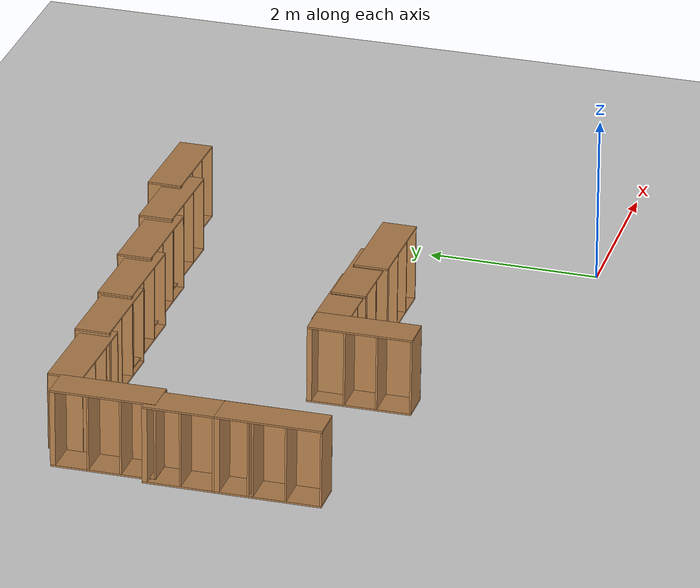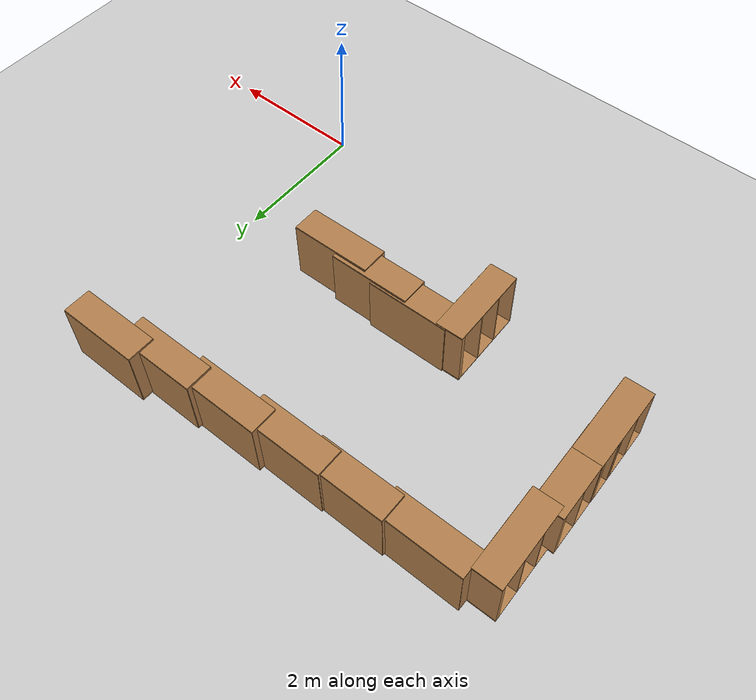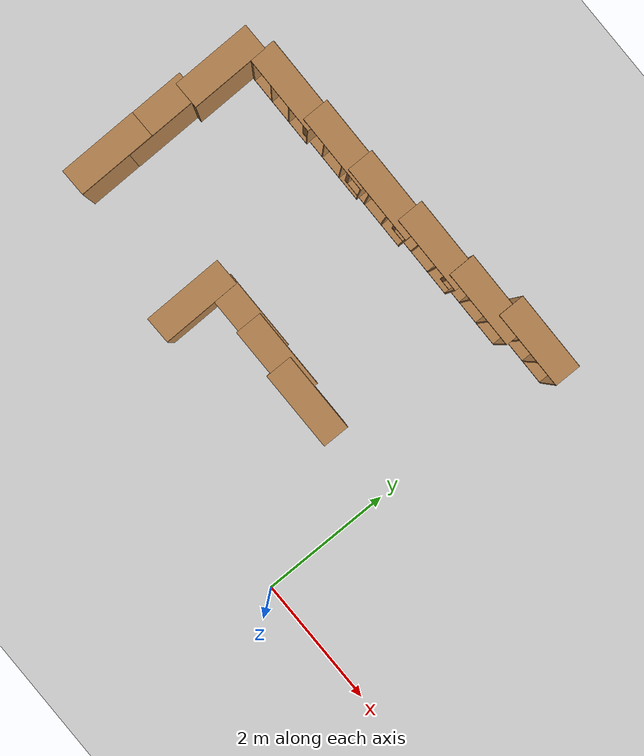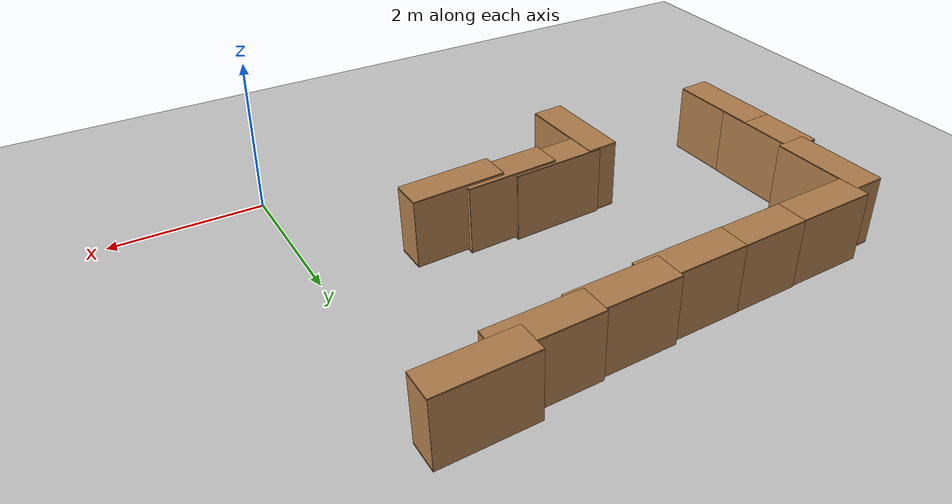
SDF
<sdf version="1.7">
 <world name="default">
  <model name="ground_plane">
   <static>1</static>
   <link name="link">
    <collision name="collision">
     <geometry><plane><normal>0 0 1</normal><size>100 100</size></plane></geometry>
     <surface>
      <contact><collide_bitmask>65535</collide_bitmask></contact>
      <friction><ode><mu>100</mu><mu2>50</mu2></ode></friction>
     </surface>
    </collision>
    <visual name="visual">
     <cast_shadows>0</cast_shadows>
     <geometry><plane><normal>0 0 1</normal><size>100 100</size></plane></geometry>
     <material>
      <script><uri>file://media/materials/scripts/gazebo.material</uri><name>Gazebo/Grey</name></script>
     </material>
    </visual>
   </link>
  </model>
  <model name="bookshelf_clone_clone_clone_4_clone_5_clone_4">
   <static>1</static>
   <link name="link">
    <inertial><mass>1</mass></inertial>
    <collision name="back">
     <pose>0 0.005 0.6 0 -0 0</pose>
     <geometry><box><size>0.9 0.01 1.2</size></box></geometry>
    </collision>
    <visual name="visual1">
     <pose>0 0.005 0.6 0 -0 0</pose>
     <geometry><box><size>0.9 0.01 1.2</size></box></geometry>
     <material>
      <script><uri>file://media/materials/scripts/gazebo.material</uri><name>Gazebo/Wood</name></script>
     </material>
    </visual>
    <collision name="left_side">
     <pose>0.45 -0.195 0.6 0 -0 0</pose>
     <geometry><box><size>0.02 0.4 1.2</size></box></geometry>
    </collision>
    <visual name="visual2">
     <pose>0.45 -0.195 0.6 0 -0 0</pose>
     <geometry><box><size>0.02 0.4 1.2</size></box></geometry>
     <material>
      <script><uri>file://media/materials/scripts/gazebo.material</uri><name>Gazebo/Wood</name></script>
     </material>
    </visual>
    <collision name="right_side">
     <pose>-0.45 -0.195 0.6 0 -0 0</pose>
     <geometry><box><size>0.02 0.4 1.2</size></box></geometry>
    </collision>
    <visual name="visual3">
     <pose>-0.45 -0.195 0.6 0 -0 0</pose>
     <geometry><box><size>0.02 0.4 1.2</size></box></geometry>
     <material>
      <script><uri>file://media/materials/scripts/gazebo.material</uri><name>Gazebo/Wood</name></script>
     </material>
    </visual>
    <collision name="bottom">
     <pose>0 -0.195 0.03 0 -0 0</pose>
     <geometry><box><size>0.88 0.4 0.06</size></box></geometry>
    </collision>
    <visual name="visual4">
     <pose>0 -0.195 0.03 0 -0 0</pose>
     <geometry><box><size>0.88 0.4 0.06</size></box></geometry>
     <material>
      <script><uri>file://media/materials/scripts/gazebo.material</uri><name>Gazebo/Wood</name></script>
     </material>
    </visual>
    <collision name="top">
     <pose>0 -0.195 1.19 0 -0 0</pose>
     <geometry><box><size>0.88 0.4 0.02</size></box></geometry>
    </collision>
    <visual name="visual5">
     <pose>0 -0.195 1.19 0 -0 0</pose>
     <geometry><box><size>0.88 0.4 0.02</size></box></geometry>
     <material>
      <script><uri>file://media/materials/scripts/gazebo.material</uri><name>Gazebo/Wood</name></script>
     </material>
    </visual>
    <collision name="low_shelf">
     <pose>0 -0.195 0.43 0 -0 0</pose>
     <geometry><box><size>0.88 0.4 0.02</size></box></geometry>
    </collision>
    <visual name="visual6">
     <pose>0 -0.195 0.43 0 -0 0</pose>
     <geometry><box><size>0.88 0.4 0.02</size></box></geometry>
     <material>
      <script><uri>file://media/materials/scripts/gazebo.material</uri><name>Gazebo/Wood</name></script>
     </material>
    </visual>
    <collision name="high_shelf">
     <pose>0 -0.195 0.8 0 -0 0</pose>
     <geometry><box><size>0.88 0.4 0.02</size></box></geometry>
    </collision>
    <visual name="visual7">
     <pose>0 -0.195 0.8 0 -0 0</pose>
     <geometry><box><size>0.88 0.4 0.02</size></box></geometry>
     <material>
      <script><uri>file://media/materials/scripts/gazebo.material</uri><name>Gazebo/Wood</name></script>
     </material>
    </visual>
   </link>
   <pose>-0.996923 5.14027 0.531222 3.1373 1.52729 3.13696</pose>
  </model>
  <model name="bookshelf_clone_clone_clone_4_clone_5_clone_5">
   <static>1</static>
   <link name="link">
    <inertial><mass>1</mass></inertial>
    <collision name="back">
     <pose>0 0.005 0.6 0 -0 0</pose>
     <geometry><box><size>0.9 0.01 1.2</size></box></geometry>
    </collision>
    <visual name="visual1">
     <pose>0 0.005 0.6 0 -0 0</pose>
     <geometry><box><size>0.9 0.01 1.2</size></box></geometry>
     <material>
      <script><uri>file://media/materials/scripts/gazebo.material</uri><name>Gazebo/Wood</name></script>
     </material>
    </visual>
    <collision name="left_side">
     <pose>0.45 -0.195 0.6 0 -0 0</pose>
     <geometry><box><size>0.02 0.4 1.2</size></box></geometry>
    </collision>
    <visual name="visual2">
     <pose>0.45 -0.195 0.6 0 -0 0</pose>
     <geometry><box><size>0.02 0.4 1.2</size></box></geometry>
     <material>
      <script><uri>file://media/materials/scripts/gazebo.material</uri><name>Gazebo/Wood</name></script>
     </material>
    </visual>
    <collision name="right_side">
     <pose>-0.45 -0.195 0.6 0 -0 0</pose>
     <geometry><box><size>0.02 0.4 1.2</size></box></geometry>
    </collision>
    <visual name="visual3">
     <pose>-0.45 -0.195 0.6 0 -0 0</pose>
     <geometry><box><size>0.02 0.4 1.2</size></box></geometry>
     <material>
      <script><uri>file://media/materials/scripts/gazebo.material</uri><name>Gazebo/Wood</name></script>
     </material>
    </visual>
    <collision name="bottom">
     <pose>0 -0.195 0.03 0 -0 0</pose>
     <geometry><box><size>0.88 0.4 0.06</size></box></geometry>
    </collision>
    <visual name="visual4">
     <pose>0 -0.195 0.03 0 -0 0</pose>
     <geometry><box><size>0.88 0.4 0.06</size></box></geometry>
     <material>
      <script><uri>file://media/materials/scripts/gazebo.material</uri><name>Gazebo/Wood</name></script>
     </material>
    </visual>
    <collision name="top">
     <pose>0 -0.195 1.19 0 -0 0</pose>
     <geometry><box><size>0.88 0.4 0.02</size></box></geometry>
    </collision>
    <visual name="visual5">
     <pose>0 -0.195 1.19 0 -0 0</pose>
     <geometry><box><size>0.88 0.4 0.02</size></box></geometry>
     <material>
      <script><uri>file://media/materials/scripts/gazebo.material</uri><name>Gazebo/Wood</name></script>
     </material>
    </visual>
    <collision name="low_shelf">
     <pose>0 -0.195 0.43 0 -0 0</pose>
     <geometry><box><size>0.88 0.4 0.02</size></box></geometry>
    </collision>
    <visual name="visual6">
     <pose>0 -0.195 0.43 0 -0 0</pose>
     <geometry><box><size>0.88 0.4 0.02</size></box></geometry>
     <material>
      <script><uri>file://media/materials/scripts/gazebo.material</uri><name>Gazebo/Wood</name></script>
     </material>
    </visual>
    <collision name="high_shelf">
     <pose>0 -0.195 0.8 0 -0 0</pose>
     <geometry><box><size>0.88 0.4 0.02</size></box></geometry>
    </collision>
    <visual name="visual7">
     <pose>0 -0.195 0.8 0 -0 0</pose>
     <geometry><box><size>0.88 0.4 0.02</size></box></geometry>
     <material>
      <script><uri>file://media/materials/scripts/gazebo.material</uri><name>Gazebo/Wood</name></script>
     </material>
    </visual>
   </link>
   <pose>-1.82659 4.97604 0.531222 3.1373 1.52729 3.13696</pose>
  </model>
  <model name="bookshelf_clone_clone_clone_4_clone_5_clone_6">
   <static>1</static>
   <link name="link">
    <inertial><mass>1</mass></inertial>
    <collision name="back">
     <pose>0 0.005 0.6 0 -0 0</pose>
     <geometry><box><size>0.9 0.01 1.2</size></box></geometry>
    </collision>
    <visual name="visual1">
     <pose>0 0.005 0.6 0 -0 0</pose>
     <geometry><box><size>0.9 0.01 1.2</size></box></geometry>
     <material>
      <script><uri>file://media/materials/scripts/gazebo.material</uri><name>Gazebo/Wood</name></script>
     </material>
    </visual>
    <collision name="left_side">
     <pose>0.45 -0.195 0.6 0 -0 0</pose>
     <geometry><box><size>0.02 0.4 1.2</size></box></geometry>
    </collision>
    <visual name="visual2">
     <pose>0.45 -0.195 0.6 0 -0 0</pose>
     <geometry><box><size>0.02 0.4 1.2</size></box></geometry>
     <material>
      <script><uri>file://media/materials/scripts/gazebo.material</uri><name>Gazebo/Wood</name></script>
     </material>
    </visual>
    <collision name="right_side">
     <pose>-0.45 -0.195 0.6 0 -0 0</pose>
     <geometry><box><size>0.02 0.4 1.2</size></box></geometry>
    </collision>
    <visual name="visual3">
     <pose>-0.45 -0.195 0.6 0 -0 0</pose>
     <geometry><box><size>0.02 0.4 1.2</size></box></geometry>
     <material>
      <script><uri>file://media/materials/scripts/gazebo.material</uri><name>Gazebo/Wood</name></script>
     </material>
    </visual>
    <collision name="bottom">
     <pose>0 -0.195 0.03 0 -0 0</pose>
     <geometry><box><size>0.88 0.4 0.06</size></box></geometry>
    </collision>
    <visual name="visual4">
     <pose>0 -0.195 0.03 0 -0 0</pose>
     <geometry><box><size>0.88 0.4 0.06</size></box></geometry>
     <material>
      <script><uri>file://media/materials/scripts/gazebo.material</uri><name>Gazebo/Wood</name></script>
     </material>
    </visual>
    <collision name="top">
     <pose>0 -0.195 1.19 0 -0 0</pose>
     <geometry><box><size>0.88 0.4 0.02</size></box></geometry>
    </collision>
    <visual name="visual5">
     <pose>0 -0.195 1.19 0 -0 0</pose>
     <geometry><box><size>0.88 0.4 0.02</size></box></geometry>
     <material>
      <script><uri>file://media/materials/scripts/gazebo.material</uri><name>Gazebo/Wood</name></script>
     </material>
    </visual>
    <collision name="low_shelf">
     <pose>0 -0.195 0.43 0 -0 0</pose>
     <geometry><box><size>0.88 0.4 0.02</size></box></geometry>
    </collision>
    <visual name="visual6">
     <pose>0 -0.195 0.43 0 -0 0</pose>
     <geometry><box><size>0.88 0.4 0.02</size></box></geometry>
     <material>
      <script><uri>file://media/materials/scripts/gazebo.material</uri><name>Gazebo/Wood</name></script>
     </material>
    </visual>
    <collision name="high_shelf">
     <pose>0 -0.195 0.8 0 -0 0</pose>
     <geometry><box><size>0.88 0.4 0.02</size></box></geometry>
    </collision>
    <visual name="visual7">
     <pose>0 -0.195 0.8 0 -0 0</pose>
     <geometry><box><size>0.88 0.4 0.02</size></box></geometry>
     <material>
      <script><uri>file://media/materials/scripts/gazebo.material</uri><name>Gazebo/Wood</name></script>
     </material>
    </visual>
   </link>
   <pose>-2.81139 4.90462 0.531222 3.1373 1.52729 3.13696</pose>
  </model>
  <model name="bookshelf_clone_clone_clone_4_clone_5_clone_7">
   <static>1</static>
   <link name="link">
    <inertial><mass>1</mass></inertial>
    <collision name="back">
     <pose>0 0.005 0.6 0 -0 0</pose>
     <geometry><box><size>0.9 0.01 1.2</size></box></geometry>
    </collision>
    <visual name="visual1">
     <pose>0 0.005 0.6 0 -0 0</pose>
     <geometry><box><size>0.9 0.01 1.2</size></box></geometry>
     <material>
      <script><uri>file://media/materials/scripts/gazebo.material</uri><name>Gazebo/Wood</name></script>
     </material>
    </visual>
    <collision name="left_side">
     <pose>0.45 -0.195 0.6 0 -0 0</pose>
     <geometry><box><size>0.02 0.4 1.2</size></box></geometry>
    </collision>
    <visual name="visual2">
     <pose>0.45 -0.195 0.6 0 -0 0</pose>
     <geometry><box><size>0.02 0.4 1.2</size></box></geometry>
     <material>
      <script><uri>file://media/materials/scripts/gazebo.material</uri><name>Gazebo/Wood</name></script>
     </material>
    </visual>
    <collision name="right_side">
     <pose>-0.45 -0.195 0.6 0 -0 0</pose>
     <geometry><box><size>0.02 0.4 1.2</size></box></geometry>
    </collision>
    <visual name="visual3">
     <pose>-0.45 -0.195 0.6 0 -0 0</pose>
     <geometry><box><size>0.02 0.4 1.2</size></box></geometry>
     <material>
      <script><uri>file://media/materials/scripts/gazebo.material</uri><name>Gazebo/Wood</name></script>
     </material>
    </visual>
    <collision name="bottom">
     <pose>0 -0.195 0.03 0 -0 0</pose>
     <geometry><box><size>0.88 0.4 0.06</size></box></geometry>
    </collision>
    <visual name="visual4">
     <pose>0 -0.195 0.03 0 -0 0</pose>
     <geometry><box><size>0.88 0.4 0.06</size></box></geometry>
     <material>
      <script><uri>file://media/materials/scripts/gazebo.material</uri><name>Gazebo/Wood</name></script>
     </material>
    </visual>
    <collision name="top">
     <pose>0 -0.195 1.19 0 -0 0</pose>
     <geometry><box><size>0.88 0.4 0.02</size></box></geometry>
    </collision>
    <visual name="visual5">
     <pose>0 -0.195 1.19 0 -0 0</pose>
     <geometry><box><size>0.88 0.4 0.02</size></box></geometry>
     <material>
      <script><uri>file://media/materials/scripts/gazebo.material</uri><name>Gazebo/Wood</name></script>
     </material>
    </visual>
    <collision name="low_shelf">
     <pose>0 -0.195 0.43 0 -0 0</pose>
     <geometry><box><size>0.88 0.4 0.02</size></box></geometry>
    </collision>
    <visual name="visual6">
     <pose>0 -0.195 0.43 0 -0 0</pose>
     <geometry><box><size>0.88 0.4 0.02</size></box></geometry>
     <material>
      <script><uri>file://media/materials/scripts/gazebo.material</uri><name>Gazebo/Wood</name></script>
     </material>
    </visual>
    <collision name="high_shelf">
     <pose>0 -0.195 0.8 0 -0 0</pose>
     <geometry><box><size>0.88 0.4 0.02</size></box></geometry>
    </collision>
    <visual name="visual7">
     <pose>0 -0.195 0.8 0 -0 0</pose>
     <geometry><box><size>0.88 0.4 0.02</size></box></geometry>
     <material>
      <script><uri>file://media/materials/scripts/gazebo.material</uri><name>Gazebo/Wood</name></script>
     </material>
    </visual>
   </link>
   <pose>-3.74348 4.82169 0.531222 3.1373 1.52729 3.13696</pose>
  </model>
  <model name="bookshelf_clone_clone_clone_4_clone_5_clone_14">
   <static>1</static>
   <link name="link">
    <inertial><mass>1</mass></inertial>
    <collision name="back">
     <pose>0 0.005 0.6 0 -0 0</pose>
     <geometry><box><size>0.9 0.01 1.2</size></box></geometry>
    </collision>
    <visual name="visual1">
     <pose>0 0.005 0.6 0 -0 0</pose>
     <geometry><box><size>0.9 0.01 1.2</size></box></geometry>
     <material>
      <script><uri>file://media/materials/scripts/gazebo.material</uri><name>Gazebo/Wood</name></script>
     </material>
    </visual>
    <collision name="left_side">
     <pose>0.45 -0.195 0.6 0 -0 0</pose>
     <geometry><box><size>0.02 0.4 1.2</size></box></geometry>
    </collision>
    <visual name="visual2">
     <pose>0.45 -0.195 0.6 0 -0 0</pose>
     <geometry><box><size>0.02 0.4 1.2</size></box></geometry>
     <material>
      <script><uri>file://media/materials/scripts/gazebo.material</uri><name>Gazebo/Wood</name></script>
     </material>
    </visual>
    <collision name="right_side">
     <pose>-0.45 -0.195 0.6 0 -0 0</pose>
     <geometry><box><size>0.02 0.4 1.2</size></box></geometry>
    </collision>
    <visual name="visual3">
     <pose>-0.45 -0.195 0.6 0 -0 0</pose>
     <geometry><box><size>0.02 0.4 1.2</size></box></geometry>
     <material>
      <script><uri>file://media/materials/scripts/gazebo.material</uri><name>Gazebo/Wood</name></script>
     </material>
    </visual>
    <collision name="bottom">
     <pose>0 -0.195 0.03 0 -0 0</pose>
     <geometry><box><size>0.88 0.4 0.06</size></box></geometry>
    </collision>
    <visual name="visual4">
     <pose>0 -0.195 0.03 0 -0 0</pose>
     <geometry><box><size>0.88 0.4 0.06</size></box></geometry>
     <material>
      <script><uri>file://media/materials/scripts/gazebo.material</uri><name>Gazebo/Wood</name></script>
     </material>
    </visual>
    <collision name="top">
     <pose>0 -0.195 1.19 0 -0 0</pose>
     <geometry><box><size>0.88 0.4 0.02</size></box></geometry>
    </collision>
    <visual name="visual5">
     <pose>0 -0.195 1.19 0 -0 0</pose>
     <geometry><box><size>0.88 0.4 0.02</size></box></geometry>
     <material>
      <script><uri>file://media/materials/scripts/gazebo.material</uri><name>Gazebo/Wood</name></script>
     </material>
    </visual>
    <collision name="low_shelf">
     <pose>0 -0.195 0.43 0 -0 0</pose>
     <geometry><box><size>0.88 0.4 0.02</size></box></geometry>
    </collision>
    <visual name="visual6">
     <pose>0 -0.195 0.43 0 -0 0</pose>
     <geometry><box><size>0.88 0.4 0.02</size></box></geometry>
     <material>
      <script><uri>file://media/materials/scripts/gazebo.material</uri><name>Gazebo/Wood</name></script>
     </material>
    </visual>
    <collision name="high_shelf">
     <pose>0 -0.195 0.8 0 -0 0</pose>
     <geometry><box><size>0.88 0.4 0.02</size></box></geometry>
    </collision>
    <visual name="visual7">
     <pose>0 -0.195 0.8 0 -0 0</pose>
     <geometry><box><size>0.88 0.4 0.02</size></box></geometry>
     <material>
      <script><uri>file://media/materials/scripts/gazebo.material</uri><name>Gazebo/Wood</name></script>
     </material>
    </visual>
   </link>
   <pose>-2.31926 2.26401 0.531222 3.1373 1.52729 3.13696</pose>
  </model>
  <model name="bookshelf_clone_clone_clone_4_clone_5_clone_15">
   <static>1</static>
   <link name="link">
    <inertial><mass>1</mass></inertial>
    <collision name="back">
     <pose>0 0.005 0.6 0 -0 0</pose>
     <geometry><box><size>0.9 0.01 1.2</size></box></geometry>
    </collision>
    <visual name="visual1">
     <pose>0 0.005 0.6 0 -0 0</pose>
     <geometry><box><size>0.9 0.01 1.2</size></box></geometry>
     <material>
      <script><uri>file://media/materials/scripts/gazebo.material</uri><name>Gazebo/Wood</name></script>
     </material>
    </visual>
    <collision name="left_side">
     <pose>0.45 -0.195 0.6 0 -0 0</pose>
     <geometry><box><size>0.02 0.4 1.2</size></box></geometry>
    </collision>
    <visual name="visual2">
     <pose>0.45 -0.195 0.6 0 -0 0</pose>
     <geometry><box><size>0.02 0.4 1.2</size></box></geometry>
     <material>
      <script><uri>file://media/materials/scripts/gazebo.material</uri><name>Gazebo/Wood</name></script>
     </material>
    </visual>
    <collision name="right_side">
     <pose>-0.45 -0.195 0.6 0 -0 0</pose>
     <geometry><box><size>0.02 0.4 1.2</size></box></geometry>
    </collision>
    <visual name="visual3">
     <pose>-0.45 -0.195 0.6 0 -0 0</pose>
     <geometry><box><size>0.02 0.4 1.2</size></box></geometry>
     <material>
      <script><uri>file://media/materials/scripts/gazebo.material</uri><name>Gazebo/Wood</name></script>
     </material>
    </visual>
    <collision name="bottom">
     <pose>0 -0.195 0.03 0 -0 0</pose>
     <geometry><box><size>0.88 0.4 0.06</size></box></geometry>
    </collision>
    <visual name="visual4">
     <pose>0 -0.195 0.03 0 -0 0</pose>
     <geometry><box><size>0.88 0.4 0.06</size></box></geometry>
     <material>
      <script><uri>file://media/materials/scripts/gazebo.material</uri><name>Gazebo/Wood</name></script>
     </material>
    </visual>
    <collision name="top">
     <pose>0 -0.195 1.19 0 -0 0</pose>
     <geometry><box><size>0.88 0.4 0.02</size></box></geometry>
    </collision>
    <visual name="visual5">
     <pose>0 -0.195 1.19 0 -0 0</pose>
     <geometry><box><size>0.88 0.4 0.02</size></box></geometry>
     <material>
      <script><uri>file://media/materials/scripts/gazebo.material</uri><name>Gazebo/Wood</name></script>
     </material>
    </visual>
    <collision name="low_shelf">
     <pose>0 -0.195 0.43 0 -0 0</pose>
     <geometry><box><size>0.88 0.4 0.02</size></box></geometry>
    </collision>
    <visual name="visual6">
     <pose>0 -0.195 0.43 0 -0 0</pose>
     <geometry><box><size>0.88 0.4 0.02</size></box></geometry>
     <material>
      <script><uri>file://media/materials/scripts/gazebo.material</uri><name>Gazebo/Wood</name></script>
     </material>
    </visual>
    <collision name="high_shelf">
     <pose>0 -0.195 0.8 0 -0 0</pose>
     <geometry><box><size>0.88 0.4 0.02</size></box></geometry>
    </collision>
    <visual name="visual7">
     <pose>0 -0.195 0.8 0 -0 0</pose>
     <geometry><box><size>0.88 0.4 0.02</size></box></geometry>
     <material>
      <script><uri>file://media/materials/scripts/gazebo.material</uri><name>Gazebo/Wood</name></script>
     </material>
    </visual>
   </link>
   <pose>-3.01775 2.32048 0.531222 3.1373 1.52729 3.13696</pose>
  </model>
  <model name="bookshelf_clone_clone_clone_4_clone_5_clone_16">
   <static>1</static>
   <link name="link">
    <inertial><mass>1</mass></inertial>
    <collision name="back">
     <pose>0 0.005 0.6 0 -0 0</pose>
     <geometry><box><size>0.9 0.01 1.2</size></box></geometry>
    </collision>
    <visual name="visual1">
     <pose>0 0.005 0.6 0 -0 0</pose>
     <geometry><box><size>0.9 0.01 1.2</size></box></geometry>
     <material>
      <script><uri>file://media/materials/scripts/gazebo.material</uri><name>Gazebo/Wood</name></script>
     </material>
    </visual>
    <collision name="left_side">
     <pose>0.45 -0.195 0.6 0 -0 0</pose>
     <geometry><box><size>0.02 0.4 1.2</size></box></geometry>
    </collision>
    <visual name="visual2">
     <pose>0.45 -0.195 0.6 0 -0 0</pose>
     <geometry><box><size>0.02 0.4 1.2</size></box></geometry>
     <material>
      <script><uri>file://media/materials/scripts/gazebo.material</uri><name>Gazebo/Wood</name></script>
     </material>
    </visual>
    <collision name="right_side">
     <pose>-0.45 -0.195 0.6 0 -0 0</pose>
     <geometry><box><size>0.02 0.4 1.2</size></box></geometry>
    </collision>
    <visual name="visual3">
     <pose>-0.45 -0.195 0.6 0 -0 0</pose>
     <geometry><box><size>0.02 0.4 1.2</size></box></geometry>
     <material>
      <script><uri>file://media/materials/scripts/gazebo.material</uri><name>Gazebo/Wood</name></script>
     </material>
    </visual>
    <collision name="bottom">
     <pose>0 -0.195 0.03 0 -0 0</pose>
     <geometry><box><size>0.88 0.4 0.06</size></box></geometry>
    </collision>
    <visual name="visual4">
     <pose>0 -0.195 0.03 0 -0 0</pose>
     <geometry><box><size>0.88 0.4 0.06</size></box></geometry>
     <material>
      <script><uri>file://media/materials/scripts/gazebo.material</uri><name>Gazebo/Wood</name></script>
     </material>
    </visual>
    <collision name="top">
     <pose>0 -0.195 1.19 0 -0 0</pose>
     <geometry><box><size>0.88 0.4 0.02</size></box></geometry>
    </collision>
    <visual name="visual5">
     <pose>0 -0.195 1.19 0 -0 0</pose>
     <geometry><box><size>0.88 0.4 0.02</size></box></geometry>
     <material>
      <script><uri>file://media/materials/scripts/gazebo.material</uri><name>Gazebo/Wood</name></script>
     </material>
    </visual>
    <collision name="low_shelf">
     <pose>0 -0.195 0.43 0 -0 0</pose>
     <geometry><box><size>0.88 0.4 0.02</size></box></geometry>
    </collision>
    <visual name="visual6">
     <pose>0 -0.195 0.43 0 -0 0</pose>
     <geometry><box><size>0.88 0.4 0.02</size></box></geometry>
     <material>
      <script><uri>file://media/materials/scripts/gazebo.material</uri><name>Gazebo/Wood</name></script>
     </material>
    </visual>
    <collision name="high_shelf">
     <pose>0 -0.195 0.8 0 -0 0</pose>
     <geometry><box><size>0.88 0.4 0.02</size></box></geometry>
    </collision>
    <visual name="visual7">
     <pose>0 -0.195 0.8 0 -0 0</pose>
     <geometry><box><size>0.88 0.4 0.02</size></box></geometry>
     <material>
      <script><uri>file://media/materials/scripts/gazebo.material</uri><name>Gazebo/Wood</name></script>
     </material>
    </visual>
   </link>
   <pose>-3.66049 2.3496 0.531222 3.1373 1.52729 3.13696</pose>
  </model>
  <model name="bookshelf_clone_clone_clone_4_clone_5_clone_17">
   <static>1</static>
   <link name="link">
    <inertial><mass>1</mass></inertial>
    <collision name="back">
     <pose>0 0.005 0.6 0 -0 0</pose>
     <geometry><box><size>0.9 0.01 1.2</size></box></geometry>
    </collision>
    <visual name="visual1">
     <pose>0 0.005 0.6 0 -0 0</pose>
     <geometry><box><size>0.9 0.01 1.2</size></box></geometry>
     <material>
      <script><uri>file://media/materials/scripts/gazebo.material</uri><name>Gazebo/Wood</name></script>
     </material>
    </visual>
    <collision name="left_side">
     <pose>0.45 -0.195 0.6 0 -0 0</pose>
     <geometry><box><size>0.02 0.4 1.2</size></box></geometry>
    </collision>
    <visual name="visual2">
     <pose>0.45 -0.195 0.6 0 -0 0</pose>
     <geometry><box><size>0.02 0.4 1.2</size></box></geometry>
     <material>
      <script><uri>file://media/materials/scripts/gazebo.material</uri><name>Gazebo/Wood</name></script>
     </material>
    </visual>
    <collision name="right_side">
     <pose>-0.45 -0.195 0.6 0 -0 0</pose>
     <geometry><box><size>0.02 0.4 1.2</size></box></geometry>
    </collision>
    <visual name="visual3">
     <pose>-0.45 -0.195 0.6 0 -0 0</pose>
     <geometry><box><size>0.02 0.4 1.2</size></box></geometry>
     <material>
      <script><uri>file://media/materials/scripts/gazebo.material</uri><name>Gazebo/Wood</name></script>
     </material>
    </visual>
    <collision name="bottom">
     <pose>0 -0.195 0.03 0 -0 0</pose>
     <geometry><box><size>0.88 0.4 0.06</size></box></geometry>
    </collision>
    <visual name="visual4">
     <pose>0 -0.195 0.03 0 -0 0</pose>
     <geometry><box><size>0.88 0.4 0.06</size></box></geometry>
     <material>
      <script><uri>file://media/materials/scripts/gazebo.material</uri><name>Gazebo/Wood</name></script>
     </material>
    </visual>
    <collision name="top">
     <pose>0 -0.195 1.19 0 -0 0</pose>
     <geometry><box><size>0.88 0.4 0.02</size></box></geometry>
    </collision>
    <visual name="visual5">
     <pose>0 -0.195 1.19 0 -0 0</pose>
     <geometry><box><size>0.88 0.4 0.02</size></box></geometry>
     <material>
      <script><uri>file://media/materials/scripts/gazebo.material</uri><name>Gazebo/Wood</name></script>
     </material>
    </visual>
    <collision name="low_shelf">
     <pose>0 -0.195 0.43 0 -0 0</pose>
     <geometry><box><size>0.88 0.4 0.02</size></box></geometry>
    </collision>
    <visual name="visual6">
     <pose>0 -0.195 0.43 0 -0 0</pose>
     <geometry><box><size>0.88 0.4 0.02</size></box></geometry>
     <material>
      <script><uri>file://media/materials/scripts/gazebo.material</uri><name>Gazebo/Wood</name></script>
     </material>
    </visual>
    <collision name="high_shelf">
     <pose>0 -0.195 0.8 0 -0 0</pose>
     <geometry><box><size>0.88 0.4 0.02</size></box></geometry>
    </collision>
    <visual name="visual7">
     <pose>0 -0.195 0.8 0 -0 0</pose>
     <geometry><box><size>0.88 0.4 0.02</size></box></geometry>
     <material>
      <script><uri>file://media/materials/scripts/gazebo.material</uri><name>Gazebo/Wood</name></script>
     </material>
    </visual>
   </link>
   <pose>-4.62934 4.78568 0.531222 3.1373 1.52729 3.13696</pose>
  </model>
  <model name="bookshelf_clone_clone_clone_5_clone_clone">
   <static>1</static>
   <link name="link">
    <inertial><mass>1</mass></inertial>
    <collision name="back">
     <pose>0 0.005 0.6 0 -0 0</pose>
     <geometry><box><size>0.9 0.01 1.2</size></box></geometry>
    </collision>
    <visual name="visual1">
     <pose>0 0.005 0.6 0 -0 0</pose>
     <geometry><box><size>0.9 0.01 1.2</size></box></geometry>
     <material>
      <script><uri>file://media/materials/scripts/gazebo.material</uri><name>Gazebo/Wood</name></script>
     </material>
    </visual>
    <collision name="left_side">
     <pose>0.45 -0.195 0.6 0 -0 0</pose>
     <geometry><box><size>0.02 0.4 1.2</size></box></geometry>
    </collision>
    <visual name="visual2">
     <pose>0.45 -0.195 0.6 0 -0 0</pose>
     <geometry><box><size>0.02 0.4 1.2</size></box></geometry>
     <material>
      <script><uri>file://media/materials/scripts/gazebo.material</uri><name>Gazebo/Wood</name></script>
     </material>
    </visual>
    <collision name="right_side">
     <pose>-0.45 -0.195 0.6 0 -0 0</pose>
     <geometry><box><size>0.02 0.4 1.2</size></box></geometry>
    </collision>
    <visual name="visual3">
     <pose>-0.45 -0.195 0.6 0 -0 0</pose>
     <geometry><box><size>0.02 0.4 1.2</size></box></geometry>
     <material>
      <script><uri>file://media/materials/scripts/gazebo.material</uri><name>Gazebo/Wood</name></script>
     </material>
    </visual>
    <collision name="bottom">
     <pose>0 -0.195 0.03 0 -0 0</pose>
     <geometry><box><size>0.88 0.4 0.06</size></box></geometry>
    </collision>
    <visual name="visual4">
     <pose>0 -0.195 0.03 0 -0 0</pose>
     <geometry><box><size>0.88 0.4 0.06</size></box></geometry>
     <material>
      <script><uri>file://media/materials/scripts/gazebo.material</uri><name>Gazebo/Wood</name></script>
     </material>
    </visual>
    <collision name="top">
     <pose>0 -0.195 1.19 0 -0 0</pose>
     <geometry><box><size>0.88 0.4 0.02</size></box></geometry>
    </collision>
    <visual name="visual5">
     <pose>0 -0.195 1.19 0 -0 0</pose>
     <geometry><box><size>0.88 0.4 0.02</size></box></geometry>
     <material>
      <script><uri>file://media/materials/scripts/gazebo.material</uri><name>Gazebo/Wood</name></script>
     </material>
    </visual>
    <collision name="low_shelf">
     <pose>0 -0.195 0.43 0 -0 0</pose>
     <geometry><box><size>0.88 0.4 0.02</size></box></geometry>
    </collision>
    <visual name="visual6">
     <pose>0 -0.195 0.43 0 -0 0</pose>
     <geometry><box><size>0.88 0.4 0.02</size></box></geometry>
     <material>
      <script><uri>file://media/materials/scripts/gazebo.material</uri><name>Gazebo/Wood</name></script>
     </material>
    </visual>
    <collision name="high_shelf">
     <pose>0 -0.195 0.8 0 -0 0</pose>
     <geometry><box><size>0.88 0.4 0.02</size></box></geometry>
    </collision>
    <visual name="visual7">
     <pose>0 -0.195 0.8 0 -0 0</pose>
     <geometry><box><size>0.88 0.4 0.02</size></box></geometry>
     <material>
      <script><uri>file://media/materials/scripts/gazebo.material</uri><name>Gazebo/Wood</name></script>
     </material>
    </visual>
   </link>
   <pose>-3.51899 2.34244 0.531222 -1.58898 1.52729 3.13696</pose>
  </model>
  <model name="bookshelf_clone_clone_clone_5_clone_clone_3">
   <static>1</static>
   <link name="link">
    <inertial><mass>1</mass></inertial>
    <collision name="back">
     <pose>0 0.005 0.6 0 -0 0</pose>
     <geometry><box><size>0.9 0.01 1.2</size></box></geometry>
    </collision>
    <visual name="visual1">
     <pose>0 0.005 0.6 0 -0 0</pose>
     <geometry><box><size>0.9 0.01 1.2</size></box></geometry>
     <material>
      <script><uri>file://media/materials/scripts/gazebo.material</uri><name>Gazebo/Wood</name></script>
     </material>
    </visual>
    <collision name="left_side">
     <pose>0.45 -0.195 0.6 0 -0 0</pose>
     <geometry><box><size>0.02 0.4 1.2</size></box></geometry>
    </collision>
    <visual name="visual2">
     <pose>0.45 -0.195 0.6 0 -0 0</pose>
     <geometry><box><size>0.02 0.4 1.2</size></box></geometry>
     <material>
      <script><uri>file://media/materials/scripts/gazebo.material</uri><name>Gazebo/Wood</name></script>
     </material>
    </visual>
    <collision name="right_side">
     <pose>-0.45 -0.195 0.6 0 -0 0</pose>
     <geometry><box><size>0.02 0.4 1.2</size></box></geometry>
    </collision>
    <visual name="visual3">
     <pose>-0.45 -0.195 0.6 0 -0 0</pose>
     <geometry><box><size>0.02 0.4 1.2</size></box></geometry>
     <material>
      <script><uri>file://media/materials/scripts/gazebo.material</uri><name>Gazebo/Wood</name></script>
     </material>
    </visual>
    <collision name="bottom">
     <pose>0 -0.195 0.03 0 -0 0</pose>
     <geometry><box><size>0.88 0.4 0.06</size></box></geometry>
    </collision>
    <visual name="visual4">
     <pose>0 -0.195 0.03 0 -0 0</pose>
     <geometry><box><size>0.88 0.4 0.06</size></box></geometry>
     <material>
      <script><uri>file://media/materials/scripts/gazebo.material</uri><name>Gazebo/Wood</name></script>
     </material>
    </visual>
    <collision name="top">
     <pose>0 -0.195 1.19 0 -0 0</pose>
     <geometry><box><size>0.88 0.4 0.02</size></box></geometry>
    </collision>
    <visual name="visual5">
     <pose>0 -0.195 1.19 0 -0 0</pose>
     <geometry><box><size>0.88 0.4 0.02</size></box></geometry>
     <material>
      <script><uri>file://media/materials/scripts/gazebo.material</uri><name>Gazebo/Wood</name></script>
     </material>
    </visual>
    <collision name="low_shelf">
     <pose>0 -0.195 0.43 0 -0 0</pose>
     <geometry><box><size>0.88 0.4 0.02</size></box></geometry>
    </collision>
    <visual name="visual6">
     <pose>0 -0.195 0.43 0 -0 0</pose>
     <geometry><box><size>0.88 0.4 0.02</size></box></geometry>
     <material>
      <script><uri>file://media/materials/scripts/gazebo.material</uri><name>Gazebo/Wood</name></script>
     </material>
    </visual>
    <collision name="high_shelf">
     <pose>0 -0.195 0.8 0 -0 0</pose>
     <geometry><box><size>0.88 0.4 0.02</size></box></geometry>
    </collision>
    <visual name="visual7">
     <pose>0 -0.195 0.8 0 -0 0</pose>
     <geometry><box><size>0.88 0.4 0.02</size></box></geometry>
     <material>
      <script><uri>file://media/materials/scripts/gazebo.material</uri><name>Gazebo/Wood</name></script>
     </material>
    </visual>
   </link>
   <pose>-5.67113 4.59276 0.531222 -1.58898 1.52729 3.13696</pose>
  </model>
  <model name="bookshelf_clone_clone_clone_5_clone_clone_4">
   <static>1</static>
   <link name="link">
    <inertial><mass>1</mass></inertial>
    <collision name="back">
     <pose>0 0.005 0.6 0 -0 0</pose>
     <geometry><box><size>0.9 0.01 1.2</size></box></geometry>
    </collision>
    <visual name="visual1">
     <pose>0 0.005 0.6 0 -0 0</pose>
     <geometry><box><size>0.9 0.01 1.2</size></box></geometry>
     <material>
      <script><uri>file://media/materials/scripts/gazebo.material</uri><name>Gazebo/Wood</name></script>
     </material>
    </visual>
    <collision name="left_side">
     <pose>0.45 -0.195 0.6 0 -0 0</pose>
     <geometry><box><size>0.02 0.4 1.2</size></box></geometry>
    </collision>
    <visual name="visual2">
     <pose>0.45 -0.195 0.6 0 -0 0</pose>
     <geometry><box><size>0.02 0.4 1.2</size></box></geometry>
     <material>
      <script><uri>file://media/materials/scripts/gazebo.material</uri><name>Gazebo/Wood</name></script>
     </material>
    </visual>
    <collision name="right_side">
     <pose>-0.45 -0.195 0.6 0 -0 0</pose>
     <geometry><box><size>0.02 0.4 1.2</size></box></geometry>
    </collision>
    <visual name="visual3">
     <pose>-0.45 -0.195 0.6 0 -0 0</pose>
     <geometry><box><size>0.02 0.4 1.2</size></box></geometry>
     <material>
      <script><uri>file://media/materials/scripts/gazebo.material</uri><name>Gazebo/Wood</name></script>
     </material>
    </visual>
    <collision name="bottom">
     <pose>0 -0.195 0.03 0 -0 0</pose>
     <geometry><box><size>0.88 0.4 0.06</size></box></geometry>
    </collision>
    <visual name="visual4">
     <pose>0 -0.195 0.03 0 -0 0</pose>
     <geometry><box><size>0.88 0.4 0.06</size></box></geometry>
     <material>
      <script><uri>file://media/materials/scripts/gazebo.material</uri><name>Gazebo/Wood</name></script>
     </material>
    </visual>
    <collision name="top">
     <pose>0 -0.195 1.19 0 -0 0</pose>
     <geometry><box><size>0.88 0.4 0.02</size></box></geometry>
    </collision>
    <visual name="visual5">
     <pose>0 -0.195 1.19 0 -0 0</pose>
     <geometry><box><size>0.88 0.4 0.02</size></box></geometry>
     <material>
      <script><uri>file://media/materials/scripts/gazebo.material</uri><name>Gazebo/Wood</name></script>
     </material>
    </visual>
    <collision name="low_shelf">
     <pose>0 -0.195 0.43 0 -0 0</pose>
     <geometry><box><size>0.88 0.4 0.02</size></box></geometry>
    </collision>
    <visual name="visual6">
     <pose>0 -0.195 0.43 0 -0 0</pose>
     <geometry><box><size>0.88 0.4 0.02</size></box></geometry>
     <material>
      <script><uri>file://media/materials/scripts/gazebo.material</uri><name>Gazebo/Wood</name></script>
     </material>
    </visual>
    <collision name="high_shelf">
     <pose>0 -0.195 0.8 0 -0 0</pose>
     <geometry><box><size>0.88 0.4 0.02</size></box></geometry>
    </collision>
    <visual name="visual7">
     <pose>0 -0.195 0.8 0 -0 0</pose>
     <geometry><box><size>0.88 0.4 0.02</size></box></geometry>
     <material>
      <script><uri>file://media/materials/scripts/gazebo.material</uri><name>Gazebo/Wood</name></script>
     </material>
    </visual>
   </link>
   <pose>-5.7371 3.52369 0.531222 -1.58898 1.52729 3.13696</pose>
  </model>
  <model name="bookshelf_clone_clone_clone_5_clone_clone_5">
   <static>1</static>
   <link name="link">
    <inertial><mass>1</mass></inertial>
    <collision name="back">
     <pose>0 0.005 0.6 0 -0 0</pose>
     <geometry><box><size>0.9 0.01 1.2</size></box></geometry>
    </collision>
    <visual name="visual1">
     <pose>0 0.005 0.6 0 -0 0</pose>
     <geometry><box><size>0.9 0.01 1.2</size></box></geometry>
     <material>
      <script><uri>file://media/materials/scripts/gazebo.material</uri><name>Gazebo/Wood</name></script>
     </material>
    </visual>
    <collision name="left_side">
     <pose>0.45 -0.195 0.6 0 -0 0</pose>
     <geometry><box><size>0.02 0.4 1.2</size></box></geometry>
    </collision>
    <visual name="visual2">
     <pose>0.45 -0.195 0.6 0 -0 0</pose>
     <geometry><box><size>0.02 0.4 1.2</size></box></geometry>
     <material>
      <script><uri>file://media/materials/scripts/gazebo.material</uri><name>Gazebo/Wood</name></script>
     </material>
    </visual>
    <collision name="right_side">
     <pose>-0.45 -0.195 0.6 0 -0 0</pose>
     <geometry><box><size>0.02 0.4 1.2</size></box></geometry>
    </collision>
    <visual name="visual3">
     <pose>-0.45 -0.195 0.6 0 -0 0</pose>
     <geometry><box><size>0.02 0.4 1.2</size></box></geometry>
     <material>
      <script><uri>file://media/materials/scripts/gazebo.material</uri><name>Gazebo/Wood</name></script>
     </material>
    </visual>
    <collision name="bottom">
     <pose>0 -0.195 0.03 0 -0 0</pose>
     <geometry><box><size>0.88 0.4 0.06</size></box></geometry>
    </collision>
    <visual name="visual4">
     <pose>0 -0.195 0.03 0 -0 0</pose>
     <geometry><box><size>0.88 0.4 0.06</size></box></geometry>
     <material>
      <script><uri>file://media/materials/scripts/gazebo.material</uri><name>Gazebo/Wood</name></script>
     </material>
    </visual>
    <collision name="top">
     <pose>0 -0.195 1.19 0 -0 0</pose>
     <geometry><box><size>0.88 0.4 0.02</size></box></geometry>
    </collision>
    <visual name="visual5">
     <pose>0 -0.195 1.19 0 -0 0</pose>
     <geometry><box><size>0.88 0.4 0.02</size></box></geometry>
     <material>
      <script><uri>file://media/materials/scripts/gazebo.material</uri><name>Gazebo/Wood</name></script>
     </material>
    </visual>
    <collision name="low_shelf">
     <pose>0 -0.195 0.43 0 -0 0</pose>
     <geometry><box><size>0.88 0.4 0.02</size></box></geometry>
    </collision>
    <visual name="visual6">
     <pose>0 -0.195 0.43 0 -0 0</pose>
     <geometry><box><size>0.88 0.4 0.02</size></box></geometry>
     <material>
      <script><uri>file://media/materials/scripts/gazebo.material</uri><name>Gazebo/Wood</name></script>
     </material>
    </visual>
    <collision name="high_shelf">
     <pose>0 -0.195 0.8 0 -0 0</pose>
     <geometry><box><size>0.88 0.4 0.02</size></box></geometry>
    </collision>
    <visual name="visual7">
     <pose>0 -0.195 0.8 0 -0 0</pose>
     <geometry><box><size>0.88 0.4 0.02</size></box></geometry>
     <material>
      <script><uri>file://media/materials/scripts/gazebo.material</uri><name>Gazebo/Wood</name></script>
     </material>
    </visual>
   </link>
   <pose>-5.72901 2.71295 0.531222 -1.58898 1.52729 3.13696</pose>
  </model>
  <model name="bookshelf_clone_clone_clone_4_clone_5_clone_17_clone">
   <static>1</static>
   <link name="link">
    <inertial><mass>1</mass></inertial>
    <collision name="back">
     <pose>0 0.005 0.6 0 -0 0</pose>
     <geometry><box><size>0.9 0.01 1.2</size></box></geometry>
    </collision>
    <visual name="visual1">
     <pose>0 0.005 0.6 0 -0 0</pose>
     <geometry><box><size>0.9 0.01 1.2</size></box></geometry>
     <material>
      <script><uri>file://media/materials/scripts/gazebo.material</uri><name>Gazebo/Wood</name></script>
     </material>
    </visual>
    <collision name="left_side">
     <pose>0.45 -0.195 0.6 0 -0 0</pose>
     <geometry><box><size>0.02 0.4 1.2</size></box></geometry>
    </collision>
    <visual name="visual2">
     <pose>0.45 -0.195 0.6 0 -0 0</pose>
     <geometry><box><size>0.02 0.4 1.2</size></box></geometry>
     <material>
      <script><uri>file://media/materials/scripts/gazebo.material</uri><name>Gazebo/Wood</name></script>
     </material>
    </visual>
    <collision name="right_side">
     <pose>-0.45 -0.195 0.6 0 -0 0</pose>
     <geometry><box><size>0.02 0.4 1.2</size></box></geometry>
    </collision>
    <visual name="visual3">
     <pose>-0.45 -0.195 0.6 0 -0 0</pose>
     <geometry><box><size>0.02 0.4 1.2</size></box></geometry>
     <material>
      <script><uri>file://media/materials/scripts/gazebo.material</uri><name>Gazebo/Wood</name></script>
     </material>
    </visual>
    <collision name="bottom">
     <pose>0 -0.195 0.03 0 -0 0</pose>
     <geometry><box><size>0.88 0.4 0.06</size></box></geometry>
    </collision>
    <visual name="visual4">
     <pose>0 -0.195 0.03 0 -0 0</pose>
     <geometry><box><size>0.88 0.4 0.06</size></box></geometry>
     <material>
      <script><uri>file://media/materials/scripts/gazebo.material</uri><name>Gazebo/Wood</name></script>
     </material>
    </visual>
    <collision name="top">
     <pose>0 -0.195 1.19 0 -0 0</pose>
     <geometry><box><size>0.88 0.4 0.02</size></box></geometry>
    </collision>
    <visual name="visual5">
     <pose>0 -0.195 1.19 0 -0 0</pose>
     <geometry><box><size>0.88 0.4 0.02</size></box></geometry>
     <material>
      <script><uri>file://media/materials/scripts/gazebo.material</uri><name>Gazebo/Wood</name></script>
     </material>
    </visual>
    <collision name="low_shelf">
     <pose>0 -0.195 0.43 0 -0 0</pose>
     <geometry><box><size>0.88 0.4 0.02</size></box></geometry>
    </collision>
    <visual name="visual6">
     <pose>0 -0.195 0.43 0 -0 0</pose>
     <geometry><box><size>0.88 0.4 0.02</size></box></geometry>
     <material>
      <script><uri>file://media/materials/scripts/gazebo.material</uri><name>Gazebo/Wood</name></script>
     </material>
    </visual>
    <collision name="high_shelf">
     <pose>0 -0.195 0.8 0 -0 0</pose>
     <geometry><box><size>0.88 0.4 0.02</size></box></geometry>
    </collision>
    <visual name="visual7">
     <pose>0 -0.195 0.8 0 -0 0</pose>
     <geometry><box><size>0.88 0.4 0.02</size></box></geometry>
     <material>
      <script><uri>file://media/materials/scripts/gazebo.material</uri><name>Gazebo/Wood</name></script>
     </material>
    </visual>
   </link>
   <pose>-5.6775 4.73741 0.531222 3.1373 1.52729 3.13696</pose>
  </model>
 </world>
</sdf>
